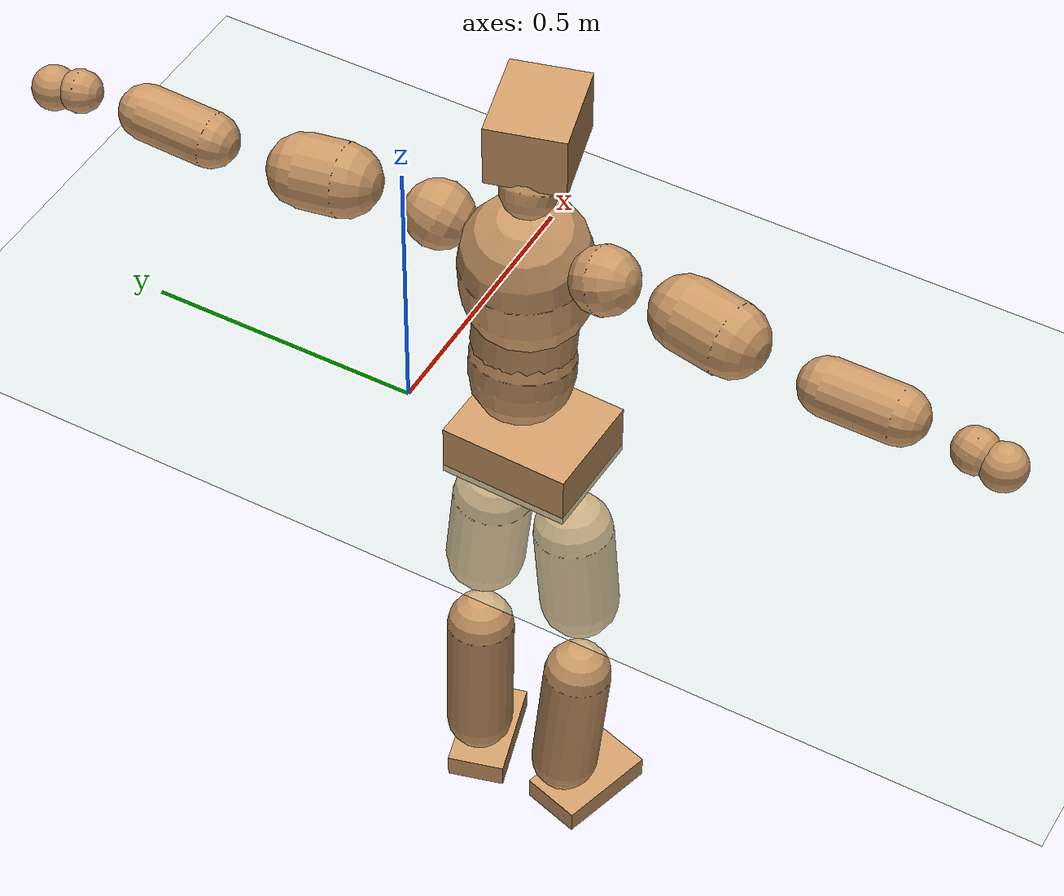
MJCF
<mujoco model="humanoid">
  <compiler coordinate="local" angle="radian"/>
  <default>
    <joint damping="0.0" armature="0.01" stiffness="0.0" limited="true"/>
    <geom conaffinity="1" condim="3" contype="7" margin="0.001" rgba="0.8 0.6 .4 1"/>
  </default>
  <asset>
    <texture type="skybox" builtin="gradient" rgb1=".4 .5 .6" rgb2="0 0 0" width="100" height="100"/>
    <texture builtin="flat" height="1278" mark="cross" markrgb="1 1 1" name="texgeom" random="0.01" rgb1="0.8 0.6 0.4" rgb2="0.8 0.6 0.4" type="cube" width="127"/>
    <texture builtin="checker" height="100" name="texplane" rgb1="0 0 0" rgb2="0.8 0.8 0.8" type="2d" width="100"/>
    <material name="MatPlane" reflectance="0.5" shininess="1" specular="1" texrepeat="60 60" texture="texplane"/>
    <material name="geom" texture="texgeom" texuniform="true"/>
  </asset>
  <worldbody>
    <light cutoff="100" diffuse="1 1 1" dir="-0 0 -1.3" directional="true" exponent="1" pos="0 0 1.3" specular=".1 .1 .1"/>
    <geom conaffinity="1" condim="3" name="floor" pos="0 0 0" rgba="0.8 0.9 0.8 1" size="100 100 .2" type="plane" material="MatPlane"/>
    <body name="Pelvis" pos="-0.0027 -0.2502 0.0406">
      <freejoint name="Pelvis"/>
      <geom type="box" contype="1" conaffinity="1" density="5359.374812" pos="-0.0122 0.0004 -0.0080" size="0.0974 0.1153 0.0493" quat="0.9999 0.0000 0.0000 -0.0166" name="Pelvis"/>
      <body name="L_Hip" pos="-0.014 0.0663 -0.0844">
        <joint name="L_Hip_x" type="hinge" pos="0 0 0" axis="1 0 0" stiffness="1600" damping="160" armature="0.02" range="-180.0000 180.0000"/>
        <joint name="L_Hip_y" type="hinge" pos="0 0 0" axis="0 1 0" stiffness="1600" damping="160" armature="0.02" range="-180.0000 180.0000"/>
        <joint name="L_Hip_z" type="hinge" pos="0 0 0" axis="0 0 1" stiffness="1600" damping="160" armature="0.02" range="-180.0000 180.0000"/>
        <geom type="capsule" contype="1" conaffinity="1" density="2040.816327" size="0.0696" fromto="0.0014 0.0104 -0.0991 0.0038 0.0276 -0.2638" name="L_Hip"/>
        <body name="L_Knee" pos="0.0052 0.0379 -0.3629">
          <joint name="L_Knee_x" type="hinge" pos="0 0 0" axis="1 0 0" stiffness="1600" damping="160" armature="0.02" range="-180.0000 180.0000"/>
          <joint name="L_Knee_y" type="hinge" pos="0 0 0" axis="0 1 0" stiffness="1600" damping="160" armature="0.02" range="-180.0000 180.0000"/>
          <joint name="L_Knee_z" type="hinge" pos="0 0 0" axis="0 0 1" stiffness="1600" damping="160" armature="0.02" range="-180.0000 180.0000"/>
          <geom type="capsule" contype="1" conaffinity="1" density="1234.567901" size="0.0604" fromto="-0.0089 -0.0037 -0.0899 -0.0321 -0.0135 -0.3247" name="L_Knee"/>
          <body name="L_Ankle" pos="-0.0411 -0.0172 -0.4146">
            <joint name="L_Ankle_x" type="hinge" pos="0 0 0" axis="1 0 0" stiffness="1600" damping="160" armature="0.02" range="-180.0000 180.0000"/>
            <joint name="L_Ankle_y" type="hinge" pos="0 0 0" axis="0 1 0" stiffness="1600" damping="160" armature="0.02" range="-180.0000 180.0000"/>
            <joint name="L_Ankle_z" type="hinge" pos="0 0 0" axis="0 0 1" stiffness="1600" damping="160" armature="0.02" range="-180.0000 180.0000"/>
            <geom type="box" contype="1" conaffinity="1" density="1000.000013" pos="0.0619 0.0172 -0.0295" size="0.094 0.0521 0.0225" quat="0.9908 0.0000 0.0000 0.1353" name="L_Ankle"/>
            <body name="L_Toe" pos="0.1238 0.0345 -0.0589">
              <joint name="L_Toe_x" type="hinge" pos="0 0 0" axis="1 0 0" stiffness="1000" damping="100" armature="0.02" range="-180.0000 180.0000"/>
              <joint name="L_Toe_y" type="hinge" pos="0 0 0" axis="0 1 0" stiffness="1000" damping="100" armature="0.02" range="-180.0000 180.0000"/>
              <joint name="L_Toe_z" type="hinge" pos="0 0 0" axis="0 0 1" stiffness="1000" damping="100" armature="0.02" range="-180.0000 180.0000"/>
              <geom type="box" contype="1" conaffinity="1" density="8720418.605518" pos="0.0000 0.0000 0.0275" size="0.0011 0.0026 0.001" quat="0.9901 0.0000 0.0000 0.1406" name="L_Toe"/>
            </body>
          </body>
        </body>
      </body>
      <body name="R_Hip" pos="-0.0087 -0.0683 -0.0923">
        <joint name="R_Hip_x" type="hinge" pos="0 0 0" axis="1 0 0" stiffness="1600" damping="160" armature="0.02" range="-180.0000 180.0000"/>
        <joint name="R_Hip_y" type="hinge" pos="0 0 0" axis="0 1 0" stiffness="1600" damping="160" armature="0.02" range="-180.0000 180.0000"/>
        <joint name="R_Hip_z" type="hinge" pos="0 0 0" axis="0 0 1" stiffness="1600" damping="160" armature="0.02" range="-180.0000 180.0000"/>
        <geom type="capsule" contype="1" conaffinity="1" density="2040.816327" size="0.0692" fromto="-0.0023 -0.0101 -0.0987 -0.0061 -0.0272 -0.2654" name="R_Hip"/>
        <body name="R_Knee" pos="-0.0084 -0.0373 -0.364">
          <joint name="R_Knee_x" type="hinge" pos="0 0 0" axis="1 0 0" stiffness="1600" damping="160" armature="0.02" range="-180.0000 180.0000"/>
          <joint name="R_Knee_y" type="hinge" pos="0 0 0" axis="0 1 0" stiffness="1600" damping="160" armature="0.02" range="-180.0000 180.0000"/>
          <joint name="R_Knee_z" type="hinge" pos="0 0 0" axis="0 0 1" stiffness="1600" damping="160" armature="0.02" range="-180.0000 180.0000"/>
          <geom type="capsule" contype="1" conaffinity="1" density="1234.567901" size="0.0602" fromto="-0.0085 0.0043 -0.0897 -0.0300 0.0154 -0.3174" name="R_Knee"/>
          <body name="R_Ankle" pos="-0.0385 0.0197 -0.407">
            <joint name="R_Ankle_x" type="hinge" pos="0 0 0" axis="1 0 0" stiffness="1600" damping="160" armature="0.02" range="-180.0000 180.0000"/>
            <joint name="R_Ankle_y" type="hinge" pos="0 0 0" axis="0 1 0" stiffness="1600" damping="160" armature="0.02" range="-180.0000 180.0000"/>
            <joint name="R_Ankle_z" type="hinge" pos="0 0 0" axis="0 0 1" stiffness="1600" damping="160" armature="0.02" range="-180.0000 180.0000"/>
            <geom type="box" contype="1" conaffinity="1" density="999.999985" pos="0.0660 -0.0195 -0.0292" size="0.0922 0.0557 0.0218" quat="0.9897 0.0000 0.0000 -0.1431" name="R_Ankle"/>
            <body name="R_Toe" pos="0.1321 -0.039 -0.0585">
              <joint name="R_Toe_x" type="hinge" pos="0 0 0" axis="1 0 0" stiffness="1000" damping="100" armature="0.02" range="-180.0000 180.0000"/>
              <joint name="R_Toe_y" type="hinge" pos="0 0 0" axis="0 1 0" stiffness="1000" damping="100" armature="0.02" range="-180.0000 180.0000"/>
              <joint name="R_Toe_z" type="hinge" pos="0 0 0" axis="0 0 1" stiffness="1000" damping="100" armature="0.02" range="-180.0000 180.0000"/>
              <geom type="box" contype="1" conaffinity="1" density="7989313.804312" pos="0.0000 0.0000 0.0292" size="0.0012 0.0027 0.0011" quat="0.9909 0.0000 0.0000 -0.1343" name="R_Toe"/>
            </body>
          </body>
        </body>
      </body>
      <body name="Torso" pos="-0.0503 0.0045 0.1286">
        <joint name="Torso_x" type="hinge" pos="0 0 0" axis="1 0 0" stiffness="2000" damping="200" armature="0.02" range="-180.0000 180.0000"/>
        <joint name="Torso_y" type="hinge" pos="0 0 0" axis="0 1 0" stiffness="2000" damping="200" armature="0.02" range="-180.0000 180.0000"/>
        <joint name="Torso_z" type="hinge" pos="0 0 0" axis="0 0 1" stiffness="2000" damping="200" armature="0.02" range="-180.0000 180.0000"/>
        <geom type="capsule" contype="1" conaffinity="1" density="2040.816327" size="0.0889" fromto="0.0152 0.0028 0.0875 0.0091 0.0016 0.0521" name="Torso"/>
        <body name="Spine" pos="0.0243 0.0044 0.1397">
          <joint name="Spine_x" type="hinge" pos="0 0 0" axis="1 0 0" stiffness="2000" damping="200" armature="0.02" range="-180.0000 180.0000"/>
          <joint name="Spine_y" type="hinge" pos="0 0 0" axis="0 1 0" stiffness="2000" damping="200" armature="0.02" range="-180.0000 180.0000"/>
          <joint name="Spine_z" type="hinge" pos="0 0 0" axis="0 0 1" stiffness="2000" damping="200" armature="0.02" range="-180.0000 180.0000"/>
          <geom type="capsule" contype="1" conaffinity="1" density="2040.816327" size="0.0872" fromto="0.0097 -0.0034 0.0866 -0.0033 0.0012 -0.0296" name="Spine"/>
          <body name="Chest" pos="0.0064 -0.0023 0.057">
            <joint name="Chest_x" type="hinge" pos="0 0 0" axis="1 0 0" stiffness="2000" damping="200" armature="0.02" range="-180.0000 180.0000"/>
            <joint name="Chest_y" type="hinge" pos="0 0 0" axis="0 1 0" stiffness="2000" damping="200" armature="0.02" range="-180.0000 180.0000"/>
            <joint name="Chest_z" type="hinge" pos="0 0 0" axis="0 0 1" stiffness="2000" damping="200" armature="0.02" range="-180.0000 180.0000"/>
            <geom type="capsule" contype="1" conaffinity="1" density="2040.816327" size="0.1097" fromto="-0.0190 -0.0053 0.1080 -0.0068 -0.0019 0.0387" name="Chest"/>
            <body name="Neck" pos="-0.0381 -0.0121 0.2105">
              <joint name="Neck_x" type="hinge" pos="0 0 0" axis="1 0 0" stiffness="1000" damping="100" armature="0.02" range="-180.0000 180.0000"/>
              <joint name="Neck_y" type="hinge" pos="0 0 0" axis="0 1 0" stiffness="1000" damping="100" armature="0.02" range="-180.0000 180.0000"/>
              <joint name="Neck_z" type="hinge" pos="0 0 0" axis="0 0 1" stiffness="1000" damping="100" armature="0.02" range="-180.0000 180.0000"/>
              <geom type="capsule" contype="1" conaffinity="1" density="1000" size="0.0472" fromto="0.0237 0.0056 0.0389 0.0247 0.0058 0.0406" name="Neck"/>
              <body name="Head" pos="0.0483 0.0114 0.0794">
                <joint name="Head_x" type="hinge" pos="0 0 0" axis="1 0 0" stiffness="1000" damping="100" armature="0.02" range="-180.0000 180.0000"/>
                <joint name="Head_y" type="hinge" pos="0 0 0" axis="0 1 0" stiffness="1000" damping="100" armature="0.02" range="-180.0000 180.0000"/>
                <joint name="Head_z" type="hinge" pos="0 0 0" axis="0 0 1" stiffness="1000" damping="100" armature="0.02" range="-180.0000 180.0000"/>
                <geom type="box" contype="1" conaffinity="1" density="2250.000043" pos="0.0252 0.0067 0.0407" size="0.0825 0.0663 0.0544" quat="0.9915 0.0000 0.0000 0.1299" name="Head"/>
              </body>
            </body>
            <body name="L_Thorax" pos="-0.0161 0.0782 0.1163">
              <joint name="L_Thorax_x" type="hinge" pos="0 0 0" axis="1 0 0" stiffness="1000" damping="100" armature="0.02" range="-180.0000 180.0000"/>
              <joint name="L_Thorax_y" type="hinge" pos="0 0 0" axis="0 1 0" stiffness="1000" damping="100" armature="0.02" range="-180.0000 180.0000"/>
              <joint name="L_Thorax_z" type="hinge" pos="0 0 0" axis="0 0 1" stiffness="1000" damping="100" armature="0.02" range="-180.0000 180.0000"/>
              <geom type="capsule" contype="1" conaffinity="1" density="1000" size="0.0575" fromto="-0.0120 0.0659 0.0232 -0.0123 0.0677 0.0239" name="L_Thorax"/>
              <body name="L_Shoulder" pos="-0.0243 0.1336 0.0471">
                <joint name="L_Shoulder_x" type="hinge" pos="0 0 0" axis="1 0 0" stiffness="1000" damping="100" armature="0.02" range="-720.0000 720.0000"/>
                <joint name="L_Shoulder_y" type="hinge" pos="0 0 0" axis="0 1 0" stiffness="1000" damping="100" armature="0.02" range="-720.0000 720.0000"/>
                <joint name="L_Shoulder_z" type="hinge" pos="0 0 0" axis="0 0 1" stiffness="1000" damping="100" armature="0.02" range="-720.0000 720.0000"/>
                <geom type="capsule" contype="1" conaffinity="1" density="1000" size="0.0616" fromto="-0.0105 0.0908 -0.0056 -0.0186 0.1604 -0.0099" name="L_Shoulder"/>
                <body name="L_Elbow" pos="-0.0291 0.2512 -0.0154">
                  <joint name="L_Elbow_x" type="hinge" pos="0 0 0" axis="1 0 0" stiffness="1000" damping="100" armature="0.02" range="-720.0000 720.0000"/>
                  <joint name="L_Elbow_y" type="hinge" pos="0 0 0" axis="0 1 0" stiffness="1000" damping="100" armature="0.02" range="-720.0000 720.0000"/>
                  <joint name="L_Elbow_z" type="hinge" pos="0 0 0" axis="0 0 1" stiffness="1000" damping="100" armature="0.02" range="-720.0000 720.0000"/>
                  <geom type="capsule" contype="1" conaffinity="1" density="1000" size="0.0467" fromto="-0.0011 0.0766 0.0045 -0.0029 0.1969 0.0117" name="L_Elbow"/>
                  <body name="L_Wrist" pos="-0.004 0.2734 0.0162">
                    <joint name="L_Wrist_x" type="hinge" pos="0 0 0" axis="1 0 0" stiffness="600" damping="60" armature="0.02" range="-180.0000 180.0000"/>
                    <joint name="L_Wrist_y" type="hinge" pos="0 0 0" axis="0 1 0" stiffness="600" damping="60" armature="0.02" range="-180.0000 180.0000"/>
                    <joint name="L_Wrist_z" type="hinge" pos="0 0 0" axis="0 0 1" stiffness="600" damping="60" armature="0.02" range="-180.0000 180.0000"/>
                    <geom type="capsule" contype="1" conaffinity="1" density="1000" size="0.0364" fromto="-0.0081 0.0449 -0.0057 -0.0084 0.0469 -0.0059" name="L_Wrist"/>
                    <body name="L_Hand" pos="-0.0165 0.0918 -0.0116">
                      <joint name="L_Hand_x" type="hinge" pos="0 0 0" axis="1 0 0" stiffness="600" damping="60" armature="0.02" range="-180.0000 180.0000"/>
                      <joint name="L_Hand_y" type="hinge" pos="0 0 0" axis="0 1 0" stiffness="600" damping="60" armature="0.02" range="-180.0000 180.0000"/>
                      <joint name="L_Hand_z" type="hinge" pos="0 0 0" axis="0 0 1" stiffness="600" damping="60" armature="0.02" range="-180.0000 180.0000"/>
                      <geom type="sphere" contype="1" conaffinity="1" density="1000" size="0.0377" pos="0.0000 0.0000 0.0000" name="L_Hand"/>
                    </body>
                  </body>
                </body>
              </body>
            </body>
            <body name="R_Thorax" pos="-0.0231 -0.0878 0.1131">
              <joint name="R_Thorax_x" type="hinge" pos="0 0 0" axis="1 0 0" stiffness="1000" damping="100" armature="0.02" range="-180.0000 180.0000"/>
              <joint name="R_Thorax_y" type="hinge" pos="0 0 0" axis="0 1 0" stiffness="1000" damping="100" armature="0.02" range="-180.0000 180.0000"/>
              <joint name="R_Thorax_z" type="hinge" pos="0 0 0" axis="0 0 1" stiffness="1000" damping="100" armature="0.02" range="-180.0000 180.0000"/>
              <geom type="capsule" contype="1" conaffinity="1" density="1000" size="0.057" fromto="-0.0063 -0.0605 0.0241 -0.0064 -0.0624 0.0248" name="R_Thorax"/>
              <body name="R_Shoulder" pos="-0.0127 -0.1229 0.0489">
                <joint name="R_Shoulder_x" type="hinge" pos="0 0 0" axis="1 0 0" stiffness="1000" damping="100" armature="0.02" range="-720.0000 720.0000"/>
                <joint name="R_Shoulder_y" type="hinge" pos="0 0 0" axis="0 1 0" stiffness="1000" damping="100" armature="0.02" range="-720.0000 720.0000"/>
                <joint name="R_Shoulder_z" type="hinge" pos="0 0 0" axis="0 0 1" stiffness="1000" damping="100" armature="0.02" range="-720.0000 720.0000"/>
                <geom type="capsule" contype="1" conaffinity="1" density="1000" size="0.0618" fromto="-0.0140 -0.0907 -0.0039 -0.0264 -0.1706 -0.0074" name="R_Shoulder"/>
                <body name="R_Elbow" pos="-0.0405 -0.2613 -0.0113">
                  <joint name="R_Elbow_x" type="hinge" pos="0 0 0" axis="1 0 0" stiffness="1000" damping="100" armature="0.02" range="-720.0000 720.0000"/>
                  <joint name="R_Elbow_y" type="hinge" pos="0 0 0" axis="0 1 0" stiffness="1000" damping="100" armature="0.02" range="-720.0000 720.0000"/>
                  <joint name="R_Elbow_z" type="hinge" pos="0 0 0" axis="0 0 1" stiffness="1000" damping="100" armature="0.02" range="-720.0000 720.0000"/>
                  <geom type="capsule" contype="1" conaffinity="1" density="1000" size="0.047" fromto="-0.0012 -0.0770 0.0013 -0.0030 -0.1956 0.0032" name="R_Elbow"/>
                  <body name="R_Wrist" pos="-0.0041 -0.2726 0.0045">
                    <joint name="R_Wrist_x" type="hinge" pos="0 0 0" axis="1 0 0" stiffness="600" damping="60" armature="0.02" range="-180.0000 180.0000"/>
                    <joint name="R_Wrist_y" type="hinge" pos="0 0 0" axis="0 1 0" stiffness="600" damping="60" armature="0.02" range="-180.0000 180.0000"/>
                    <joint name="R_Wrist_z" type="hinge" pos="0 0 0" axis="0 0 1" stiffness="600" damping="60" armature="0.02" range="-180.0000 180.0000"/>
                    <geom type="capsule" contype="1" conaffinity="1" density="1000" size="0.0371" fromto="-0.0052 -0.0460 -0.0047 -0.0055 -0.0480 -0.0049" name="R_Wrist"/>
                    <body name="R_Hand" pos="-0.0107 -0.0939 -0.0096">
                      <joint name="R_Hand_x" type="hinge" pos="0 0 0" axis="1 0 0" stiffness="600" damping="60" armature="0.02" range="-180.0000 180.0000"/>
                      <joint name="R_Hand_y" type="hinge" pos="0 0 0" axis="0 1 0" stiffness="600" damping="60" armature="0.02" range="-180.0000 180.0000"/>
                      <joint name="R_Hand_z" type="hinge" pos="0 0 0" axis="0 0 1" stiffness="600" damping="60" armature="0.02" range="-180.0000 180.0000"/>
                      <geom type="sphere" contype="1" conaffinity="1" density="1000" size="0.0382" pos="0.0000 0.0000 0.0000" name="R_Hand"/>
                    </body>
                  </body>
                </body>
              </body>
            </body>
          </body>
        </body>
      </body>
    </body>
  </worldbody>
  <actuator>
    <motor name="L_Hip_x" joint="L_Hip_x" gear="500"/>
    <motor name="L_Hip_y" joint="L_Hip_y" gear="500"/>
    <motor name="L_Hip_z" joint="L_Hip_z" gear="500"/>
    <motor name="L_Knee_x" joint="L_Knee_x" gear="500"/>
    <motor name="L_Knee_y" joint="L_Knee_y" gear="500"/>
    <motor name="L_Knee_z" joint="L_Knee_z" gear="500"/>
    <motor name="L_Ankle_x" joint="L_Ankle_x" gear="500"/>
    <motor name="L_Ankle_y" joint="L_Ankle_y" gear="500"/>
    <motor name="L_Ankle_z" joint="L_Ankle_z" gear="500"/>
    <motor name="L_Toe_x" joint="L_Toe_x" gear="500"/>
    <motor name="L_Toe_y" joint="L_Toe_y" gear="500"/>
    <motor name="L_Toe_z" joint="L_Toe_z" gear="500"/>
    <motor name="R_Hip_x" joint="R_Hip_x" gear="500"/>
    <motor name="R_Hip_y" joint="R_Hip_y" gear="500"/>
    <motor name="R_Hip_z" joint="R_Hip_z" gear="500"/>
    <motor name="R_Knee_x" joint="R_Knee_x" gear="500"/>
    <motor name="R_Knee_y" joint="R_Knee_y" gear="500"/>
    <motor name="R_Knee_z" joint="R_Knee_z" gear="500"/>
    <motor name="R_Ankle_x" joint="R_Ankle_x" gear="500"/>
    <motor name="R_Ankle_y" joint="R_Ankle_y" gear="500"/>
    <motor name="R_Ankle_z" joint="R_Ankle_z" gear="500"/>
    <motor name="R_Toe_x" joint="R_Toe_x" gear="500"/>
    <motor name="R_Toe_y" joint="R_Toe_y" gear="500"/>
    <motor name="R_Toe_z" joint="R_Toe_z" gear="500"/>
    <motor name="Torso_x" joint="Torso_x" gear="500"/>
    <motor name="Torso_y" joint="Torso_y" gear="500"/>
    <motor name="Torso_z" joint="Torso_z" gear="500"/>
    <motor name="Spine_x" joint="Spine_x" gear="500"/>
    <motor name="Spine_y" joint="Spine_y" gear="500"/>
    <motor name="Spine_z" joint="Spine_z" gear="500"/>
    <motor name="Chest_x" joint="Chest_x" gear="500"/>
    <motor name="Chest_y" joint="Chest_y" gear="500"/>
    <motor name="Chest_z" joint="Chest_z" gear="500"/>
    <motor name="Neck_x" joint="Neck_x" gear="500"/>
    <motor name="Neck_y" joint="Neck_y" gear="500"/>
    <motor name="Neck_z" joint="Neck_z" gear="500"/>
    <motor name="Head_x" joint="Head_x" gear="500"/>
    <motor name="Head_y" joint="Head_y" gear="500"/>
    <motor name="Head_z" joint="Head_z" gear="500"/>
    <motor name="L_Thorax_x" joint="L_Thorax_x" gear="500"/>
    <motor name="L_Thorax_y" joint="L_Thorax_y" gear="500"/>
    <motor name="L_Thorax_z" joint="L_Thorax_z" gear="500"/>
    <motor name="L_Shoulder_x" joint="L_Shoulder_x" gear="500"/>
    <motor name="L_Shoulder_y" joint="L_Shoulder_y" gear="500"/>
    <motor name="L_Shoulder_z" joint="L_Shoulder_z" gear="500"/>
    <motor name="L_Elbow_x" joint="L_Elbow_x" gear="500"/>
    <motor name="L_Elbow_y" joint="L_Elbow_y" gear="500"/>
    <motor name="L_Elbow_z" joint="L_Elbow_z" gear="500"/>
    <motor name="L_Wrist_x" joint="L_Wrist_x" gear="500"/>
    <motor name="L_Wrist_y" joint="L_Wrist_y" gear="500"/>
    <motor name="L_Wrist_z" joint="L_Wrist_z" gear="500"/>
    <motor name="L_Hand_x" joint="L_Hand_x" gear="500"/>
    <motor name="L_Hand_y" joint="L_Hand_y" gear="500"/>
    <motor name="L_Hand_z" joint="L_Hand_z" gear="500"/>
    <motor name="R_Thorax_x" joint="R_Thorax_x" gear="500"/>
    <motor name="R_Thorax_y" joint="R_Thorax_y" gear="500"/>
    <motor name="R_Thorax_z" joint="R_Thorax_z" gear="500"/>
    <motor name="R_Shoulder_x" joint="R_Shoulder_x" gear="500"/>
    <motor name="R_Shoulder_y" joint="R_Shoulder_y" gear="500"/>
    <motor name="R_Shoulder_z" joint="R_Shoulder_z" gear="500"/>
    <motor name="R_Elbow_x" joint="R_Elbow_x" gear="500"/>
    <motor name="R_Elbow_y" joint="R_Elbow_y" gear="500"/>
    <motor name="R_Elbow_z" joint="R_Elbow_z" gear="500"/>
    <motor name="R_Wrist_x" joint="R_Wrist_x" gear="500"/>
    <motor name="R_Wrist_y" joint="R_Wrist_y" gear="500"/>
    <motor name="R_Wrist_z" joint="R_Wrist_z" gear="500"/>
    <motor name="R_Hand_x" joint="R_Hand_x" gear="500"/>
    <motor name="R_Hand_y" joint="R_Hand_y" gear="500"/>
    <motor name="R_Hand_z" joint="R_Hand_z" gear="500"/>
  </actuator>
  <contact>
    <exclude body1="Torso" body2="Chest"/>
    <exclude body1="Head" body2="Chest"/>
    <exclude body1="R_Knee" body2="R_Toe"/>
    <exclude body1="R_Knee" body2="L_Ankle"/>
    <exclude body1="R_Knee" body2="L_Toe"/>
    <exclude body1="L_Knee" body2="L_Toe"/>
    <exclude body1="L_Knee" body2="R_Ankle"/>
    <exclude body1="L_Knee" body2="R_Toe"/>
    <exclude body1="L_Shoulder" body2="Chest"/>
    <exclude body1="R_Shoulder" body2="Chest"/>
  </contact>
  <sensor/>
  <size njmax="700" nconmax="700"/>
</mujoco>
